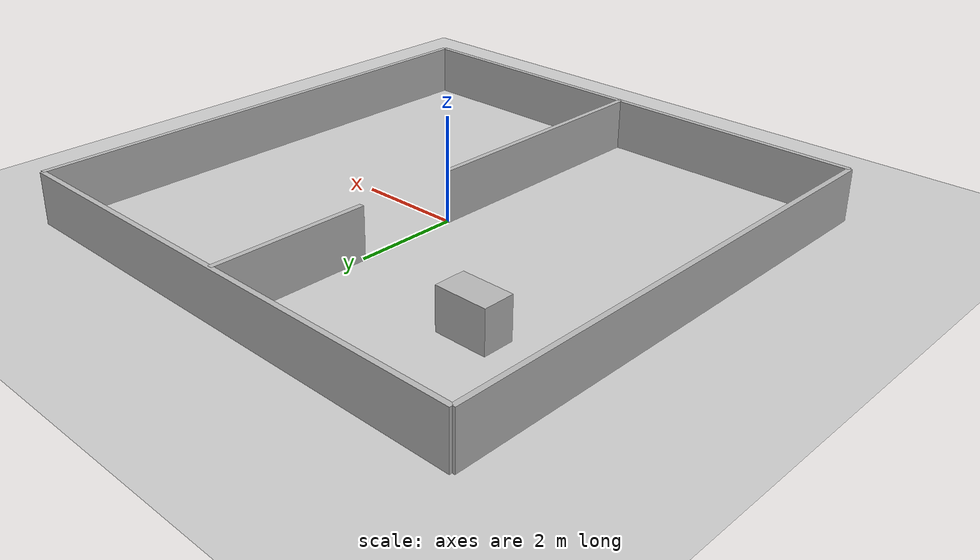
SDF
<?xml version="1.0"?>
<!-- SocialNav test environment: a bounded area with an internal wall forming a corridor
     and a couple of obstacles (tables). Gazebo Classic SDF. -->
<sdf version="1.6">
  <world name="social_world">

    <include><uri>model://sun</uri></include>
    <include><uri>model://ground_plane</uri></include>

    <physics type="ode">
      <max_step_size>0.005</max_step_size>
      <real_time_factor>1.0</real_time_factor>
      <real_time_update_rate>200</real_time_update_rate>
    </physics>

    <!-- Reusable wall macro is not available in SDF; walls are spelled out. -->
    <model name="walls">
      <static>true</static>

      <!-- Outer boundary: 10 m x 10 m room, walls 0.1 m thick, 1 m tall. -->
      <link name="north">
        <pose>0 5 0.5 0 0 0</pose>
        <collision name="c"><geometry><box><size>10 0.1 1</size></box></geometry></collision>
        <visual name="v"><geometry><box><size>10 0.1 1</size></box></geometry></visual>
      </link>
      <link name="south">
        <pose>0 -5 0.5 0 0 0</pose>
        <collision name="c"><geometry><box><size>10 0.1 1</size></box></geometry></collision>
        <visual name="v"><geometry><box><size>10 0.1 1</size></box></geometry></visual>
      </link>
      <link name="east">
        <pose>5 0 0.5 0 0 0</pose>
        <collision name="c"><geometry><box><size>0.1 10 1</size></box></geometry></collision>
        <visual name="v"><geometry><box><size>0.1 10 1</size></box></geometry></visual>
      </link>
      <link name="west">
        <pose>-5 0 0.5 0 0 0</pose>
        <collision name="c"><geometry><box><size>0.1 10 1</size></box></geometry></collision>
        <visual name="v"><geometry><box><size>0.1 10 1</size></box></geometry></visual>
      </link>

      <!-- Internal wall creating a ~2.0 m corridor gap (y in [0.0, 2.0]) sized for the
           MiR-100 (~0.9 x 0.58 m); still exercises corridor behavior. -->
      <link name="divider_lower">
        <pose>0 -2.5 0.5 0 0 0</pose>
        <collision name="c"><geometry><box><size>0.1 5.0 1</size></box></geometry></collision>
        <visual name="v"><geometry><box><size>0.1 5.0 1</size></box></geometry></visual>
      </link>
      <link name="divider_upper">
        <pose>0 3.5 0.5 0 0 0</pose>
        <collision name="c"><geometry><box><size>0.1 3.0 1</size></box></geometry></collision>
        <visual name="v"><geometry><box><size>0.1 3.0 1</size></box></geometry></visual>
      </link>
    </model>

    <!-- A table obstacle (static obstacle handling). -->
    <model name="table">
      <static>true</static>
      <link name="link">
        <pose>-3 2.5 0.4 0 0 0</pose>
        <collision name="c"><geometry><box><size>1.0 0.6 0.8</size></box></geometry></collision>
        <visual name="v"><geometry><box><size>1.0 0.6 0.8</size></box></geometry></visual>
      </link>
    </model>

  </world>
</sdf>
